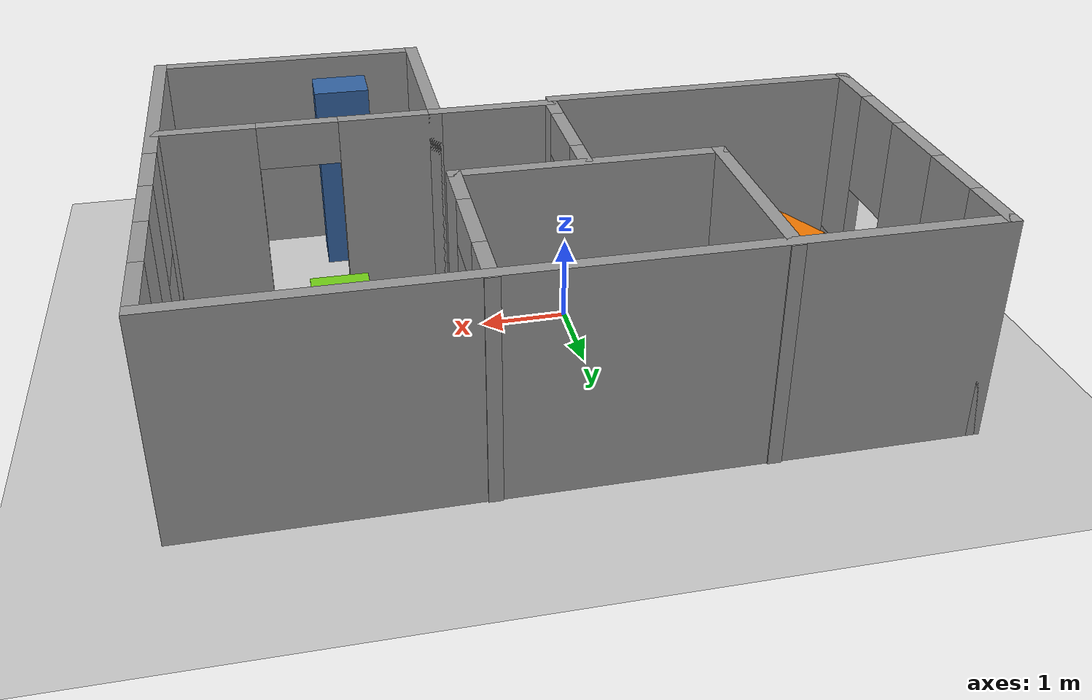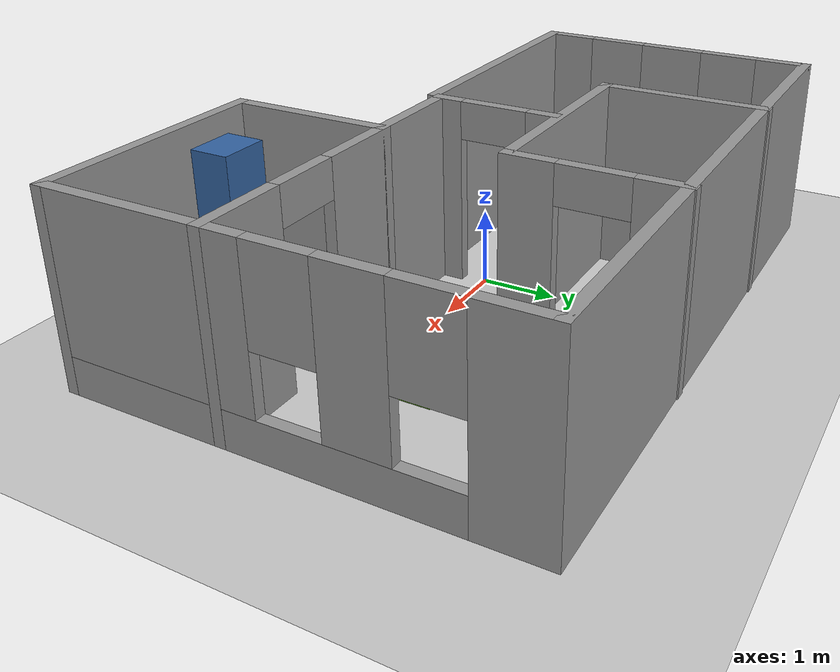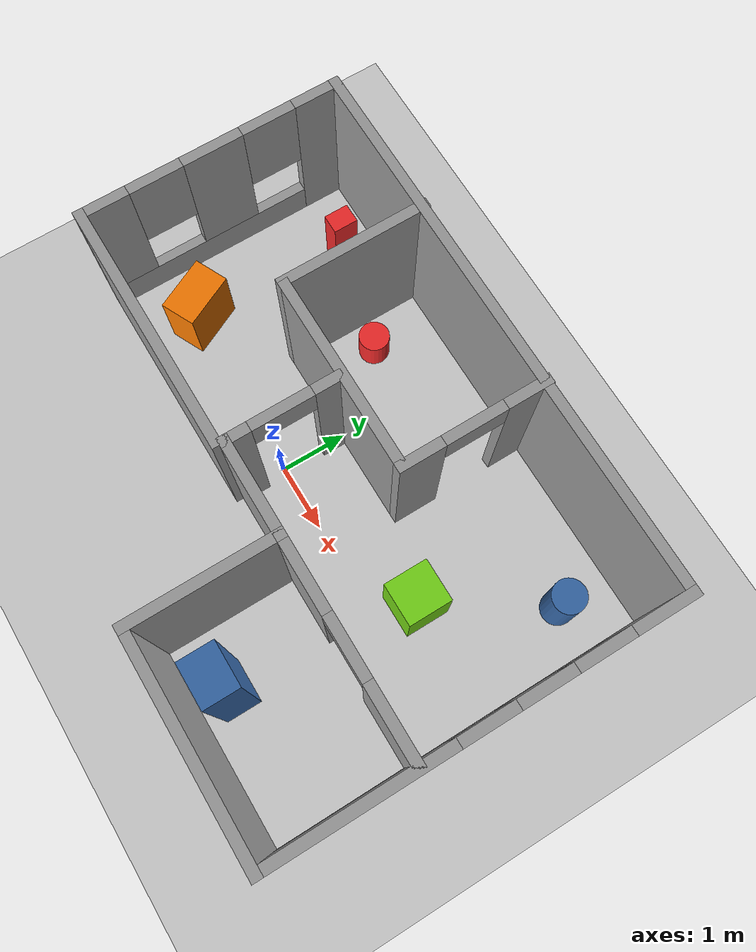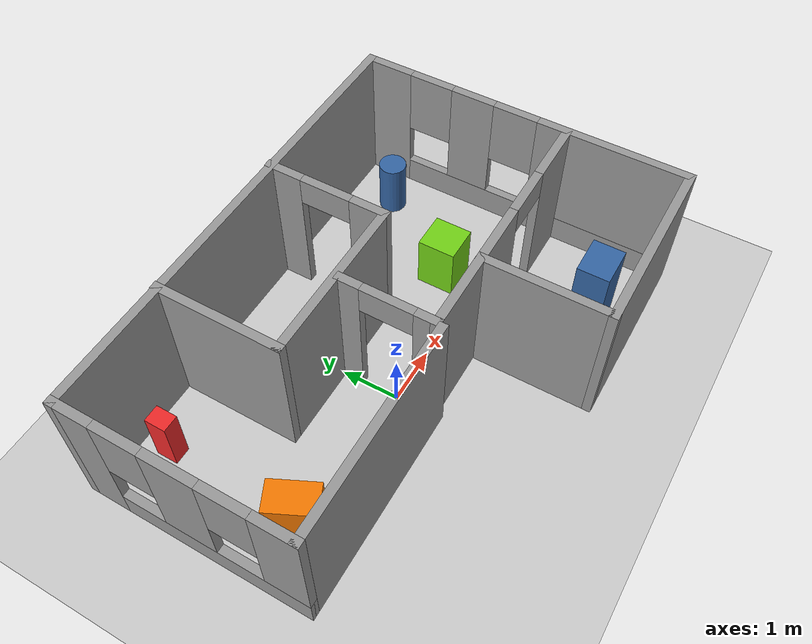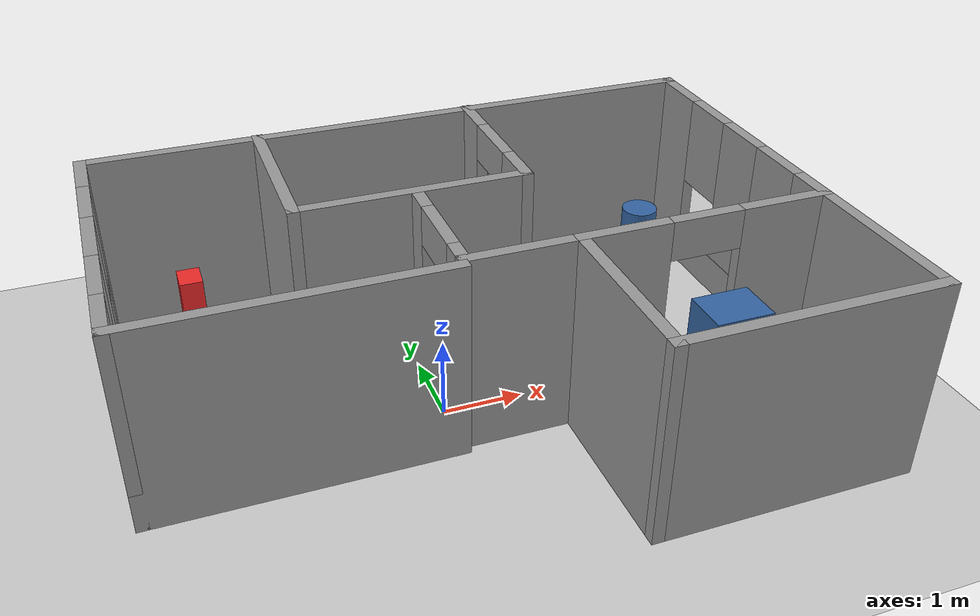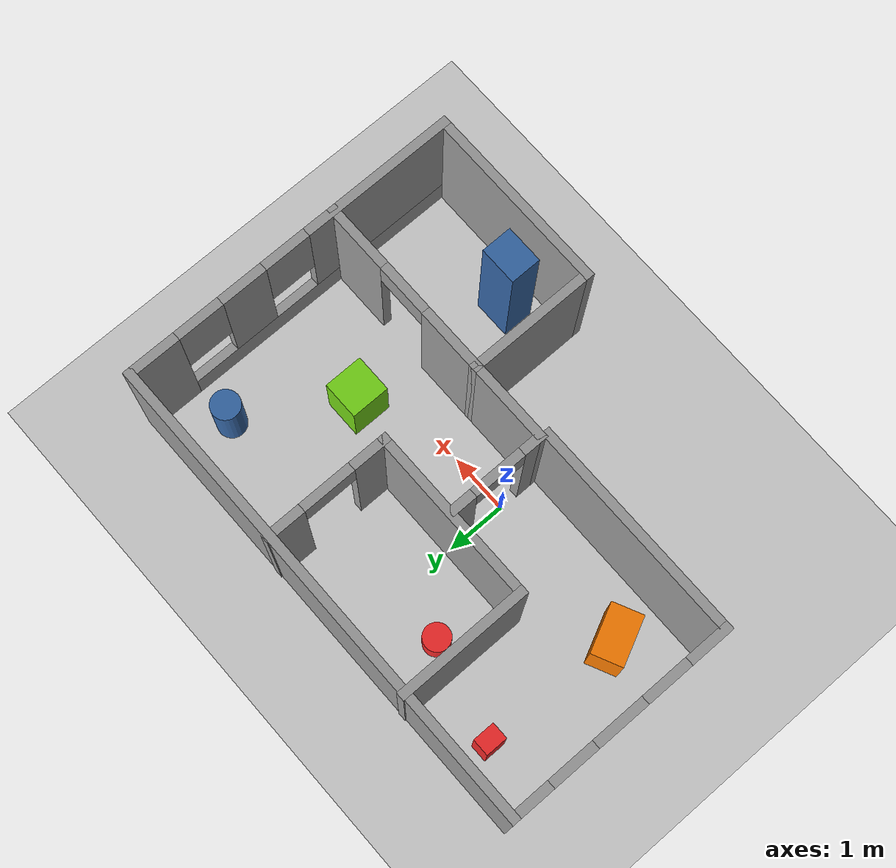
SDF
<sdf version="1.7">
 <world name="default">
  <light name="sun" type="directional">
   <pose>0 0 10 0 -0 0</pose>
   <diffuse>0.8 0.8 0.8 1</diffuse>
   <specular>0.2 0.2 0.2 1</specular>
   <attenuation>
    <range>1000</range>
    <constant>0.9</constant>
    <linear>0.01</linear>
    <quadratic>0.001</quadratic>
   </attenuation>
   <direction>-0.5 0.1 -0.9</direction>
   <spot><inner_angle>0</inner_angle><outer_angle>0</outer_angle><falloff>0</falloff></spot>
  </light>
  <model name="ground_plane">
   <static>1</static>
   <link name="link">
    <collision name="collision">
     <geometry><plane><normal>0 0 1</normal><size>100 100</size></plane></geometry>
     <surface>
      <contact><collide_bitmask>65535</collide_bitmask></contact>
      <friction><ode><mu>100</mu><mu2>50</mu2></ode></friction>
     </surface>
    </collision>
    <visual name="visual">
     <cast_shadows>0</cast_shadows>
     <geometry><plane><normal>0 0 1</normal><size>100 100</size></plane></geometry>
     <material>
      <script><uri>file://media/materials/scripts/gazebo.material</uri><name>Gazebo/Grey</name></script>
     </material>
    </visual>
   </link>
  </model>
  <gravity>0 0 -9.8</gravity>
  <magnetic_field>6e-06 2.3e-05 -4.2e-05</magnetic_field>
  <atmosphere type="adiabatic"/>
  <physics type="ode">
   <max_step_size>0.001</max_step_size>
   <real_time_factor>1</real_time_factor>
   <real_time_update_rate>1000</real_time_update_rate>
  </physics>
  <scene><ambient>0.4 0.4 0.4 1</ambient><background>0.7 0.7 0.7 1</background><shadows>1</shadows></scene>
  <spherical_coordinates>
   <surface_model>EARTH_WGS84</surface_model>
   <latitude_deg>0</latitude_deg>
   <longitude_deg>0</longitude_deg>
   <elevation>0</elevation>
   <heading_deg>0</heading_deg>
  </spherical_coordinates>
  <model name="dd_world">
   <pose>0.440177 0.38994 0 0 -0 0</pose>
   <link name="Wall_0">
    <collision name="Wall_0_Collision">
     <geometry><box><size>8.25 0.15 2.5</size></box></geometry>
     <pose>0 0 1.25 0 -0 0</pose>
    </collision>
    <visual name="Wall_0_Visual">
     <pose>0 0 1.25 0 -0 0</pose>
     <geometry><box><size>8.25 0.15 2.5</size></box></geometry>
     <material>
      <script><uri>file://media/materials/scripts/gazebo.material</uri><name>Gazebo/Grey</name></script>
      <ambient>1 1 1 1</ambient>
     </material>
     <meta><layer>0</layer></meta>
    </visual>
    <pose>-0 2.72358 0 0 -0 0</pose>
   </link>
   <link name="Wall_1">
    <pose>4.05 -0.201418 0 0 -0 -1.5708</pose>
    <visual name="Wall_1_Visual_0">
     <pose>-2.5416 0 1.25 0 -0 0</pose>
     <geometry><box><size>0.916794 0.15 2.5</size></box></geometry>
     <material>
      <script><uri>file://media/materials/scripts/gazebo.material</uri><name>Gazebo/Grey</name></script>
      <ambient>1 1 1 1</ambient>
     </material>
     <meta><layer>0</layer></meta>
    </visual>
    <collision name="Wall_1_Collision_0">
     <geometry><box><size>0.916794 0.15 2.5</size></box></geometry>
     <pose>-2.5416 0 1.25 0 -0 0</pose>
    </collision>
    <visual name="Wall_1_Visual_1">
     <pose>0.458397 0 0.25 0 -0 0</pose>
     <geometry><box><size>5.08321 0.15 0.5</size></box></geometry>
     <material>
      <script><uri>file://media/materials/scripts/gazebo.material</uri><name>Gazebo/Grey</name></script>
      <ambient>1 1 1 1</ambient>
     </material>
     <meta><layer>0</layer></meta>
    </visual>
    <collision name="Wall_1_Collision_1">
     <geometry><box><size>5.08321 0.15 0.5</size></box></geometry>
     <pose>0.458397 0 0.25 0 -0 0</pose>
    </collision>
    <visual name="Wall_1_Visual_2">
     <pose>-0.887408 0 1.5 0 -0 0</pose>
     <geometry><box><size>0.791596 0.15 2</size></box></geometry>
     <material>
      <script><uri>file://media/materials/scripts/gazebo.material</uri><name>Gazebo/Grey</name></script>
      <ambient>1 1 1 1</ambient>
     </material>
     <meta><layer>0</layer></meta>
    </visual>
    <collision name="Wall_1_Collision_2">
     <geometry><box><size>0.791596 0.15 2</size></box></geometry>
     <pose>-0.887408 0 1.5 0 -0 0</pose>
    </collision>
    <visual name="Wall_1_Visual_3">
     <pose>1.6542 0 1.5 0 -0 0</pose>
     <geometry><box><size>2.69161 0.15 2</size></box></geometry>
     <material>
      <script><uri>file://media/materials/scripts/gazebo.material</uri><name>Gazebo/Grey</name></script>
      <ambient>1 1 1 1</ambient>
     </material>
     <meta><layer>0</layer></meta>
    </visual>
    <collision name="Wall_1_Collision_3">
     <geometry><box><size>2.69161 0.15 2</size></box></geometry>
     <pose>1.6542 0 1.5 0 -0 0</pose>
    </collision>
    <visual name="Wall_1_Visual_4">
     <pose>-1.68321 0 1.9 0 -0 0</pose>
     <geometry><box><size>0.8 0.15 1.2</size></box></geometry>
     <material>
      <script><uri>file://media/materials/scripts/gazebo.material</uri><name>Gazebo/Grey</name></script>
      <ambient>1 1 1 1</ambient>
     </material>
     <meta><layer>0</layer></meta>
    </visual>
    <collision name="Wall_1_Collision_4">
     <geometry><box><size>0.8 0.15 1.2</size></box></geometry>
     <pose>-1.68321 0 1.9 0 -0 0</pose>
    </collision>
    <visual name="Wall_1_Visual_5">
     <pose>-0.09161 0 1.9 0 -0 0</pose>
     <geometry><box><size>0.8 0.15 1.2</size></box></geometry>
     <material>
      <script><uri>file://media/materials/scripts/gazebo.material</uri><name>Gazebo/Grey</name></script>
      <ambient>1 1 1 1</ambient>
     </material>
     <meta><layer>0</layer></meta>
    </visual>
    <collision name="Wall_1_Collision_5">
     <geometry><box><size>0.8 0.15 1.2</size></box></geometry>
     <pose>-0.09161 0 1.9 0 -0 0</pose>
    </collision>
   </link>
   <link name="Wall_11">
    <collision name="Wall_11_Collision">
     <geometry><box><size>1.5 0.15 2.5</size></box></geometry>
     <pose>0 0 1.25 0 -0 0</pose>
    </collision>
    <visual name="Wall_11_Visual">
     <pose>0 0 1.25 0 -0 0</pose>
     <geometry><box><size>1.5 0.15 2.5</size></box></geometry>
     <material>
      <script><uri>file://media/materials/scripts/gazebo.material</uri><name>Gazebo/Grey</name></script>
      <ambient>1 1 1 1</ambient>
     </material>
     <meta><layer>0</layer></meta>
    </visual>
    <pose>0.275 -1.02642 0 0 -0 3.14159</pose>
   </link>
   <link name="Wall_12">
    <pose>-0.4 -0.226418 0 0 -0 1.5708</pose>
    <visual name="Wall_12_Visual_0">
     <pose>-0.66541 0 1.25 0 -0 0</pose>
     <geometry><box><size>0.419179 0.15 2.5</size></box></geometry>
     <material>
      <script><uri>file://media/materials/scripts/gazebo.material</uri><name>Gazebo/Grey</name></script>
      <ambient>1 1 1 1</ambient>
     </material>
     <meta><layer>0</layer></meta>
    </visual>
    <collision name="Wall_12_Collision_0">
     <geometry><box><size>0.419179 0.15 2.5</size></box></geometry>
     <pose>-0.66541 0 1.25 0 -0 0</pose>
    </collision>
    <visual name="Wall_12_Visual_1">
     <pose>0.65959 0 1.25 0 -0 0</pose>
     <geometry><box><size>0.430821 0.15 2.5</size></box></geometry>
     <material>
      <script><uri>file://media/materials/scripts/gazebo.material</uri><name>Gazebo/Grey</name></script>
      <ambient>1 1 1 1</ambient>
     </material>
     <meta><layer>0</layer></meta>
    </visual>
    <collision name="Wall_12_Collision_1">
     <geometry><box><size>0.430821 0.15 2.5</size></box></geometry>
     <pose>0.65959 0 1.25 0 -0 0</pose>
    </collision>
    <visual name="Wall_12_Visual_2">
     <pose>-0.005821 0 2.25 0 -0 0</pose>
     <geometry><box><size>0.9 0.15 0.5</size></box></geometry>
     <material>
      <script><uri>file://media/materials/scripts/gazebo.material</uri><name>Gazebo/Grey</name></script>
      <ambient>1 1 1 1</ambient>
     </material>
     <meta><layer>0</layer></meta>
    </visual>
    <collision name="Wall_12_Collision_2">
     <geometry><box><size>0.9 0.15 0.5</size></box></geometry>
     <pose>-0.005821 0 2.25 0 -0 0</pose>
    </collision>
   </link>
   <link name="Wall_14">
    <pose>-4.05 0.798582 0 0 -0 -1.5708</pose>
    <visual name="Wall_14_Visual_0">
     <pose>-1.62905 0 1.25 0 -0 0</pose>
     <geometry><box><size>0.741894 0.15 2.5</size></box></geometry>
     <material>
      <script><uri>file://media/materials/scripts/gazebo.material</uri><name>Gazebo/Grey</name></script>
      <ambient>1 1 1 1</ambient>
     </material>
     <meta><layer>0</layer></meta>
    </visual>
    <collision name="Wall_14_Collision_0">
     <geometry><box><size>0.741894 0.15 2.5</size></box></geometry>
     <pose>-1.62905 0 1.25 0 -0 0</pose>
    </collision>
    <visual name="Wall_14_Visual_1">
     <pose>0.370947 0 0.25 0 -0 0</pose>
     <geometry><box><size>3.25811 0.15 0.5</size></box></geometry>
     <material>
      <script><uri>file://media/materials/scripts/gazebo.material</uri><name>Gazebo/Grey</name></script>
      <ambient>1 1 1 1</ambient>
     </material>
     <meta><layer>0</layer></meta>
    </visual>
    <collision name="Wall_14_Collision_1">
     <geometry><box><size>3.25811 0.15 0.5</size></box></geometry>
     <pose>0.370947 0 0.25 0 -0 0</pose>
    </collision>
    <visual name="Wall_14_Visual_2">
     <pose>-0.009838 0 1.5 0 -0 0</pose>
     <geometry><box><size>0.896536 0.15 2</size></box></geometry>
     <material>
      <script><uri>file://media/materials/scripts/gazebo.material</uri><name>Gazebo/Grey</name></script>
      <ambient>1 1 1 1</ambient>
     </material>
     <meta><layer>0</layer></meta>
    </visual>
    <collision name="Wall_14_Collision_2">
     <geometry><box><size>0.896536 0.15 2</size></box></geometry>
     <pose>-0.009838 0 1.5 0 -0 0</pose>
    </collision>
    <visual name="Wall_14_Visual_3">
     <pose>1.61922 0 1.5 0 -0 0</pose>
     <geometry><box><size>0.76157 0.15 2</size></box></geometry>
     <material>
      <script><uri>file://media/materials/scripts/gazebo.material</uri><name>Gazebo/Grey</name></script>
      <ambient>1 1 1 1</ambient>
     </material>
     <meta><layer>0</layer></meta>
    </visual>
    <collision name="Wall_14_Collision_3">
     <geometry><box><size>0.76157 0.15 2</size></box></geometry>
     <pose>1.61922 0 1.5 0 -0 0</pose>
    </collision>
    <visual name="Wall_14_Visual_4">
     <pose>-0.858106 0 1.9 0 -0 0</pose>
     <geometry><box><size>0.8 0.15 1.2</size></box></geometry>
     <material>
      <script><uri>file://media/materials/scripts/gazebo.material</uri><name>Gazebo/Grey</name></script>
      <ambient>1 1 1 1</ambient>
     </material>
     <meta><layer>0</layer></meta>
    </visual>
    <collision name="Wall_14_Collision_4">
     <geometry><box><size>0.8 0.15 1.2</size></box></geometry>
     <pose>-0.858106 0 1.9 0 -0 0</pose>
    </collision>
    <visual name="Wall_14_Visual_5">
     <pose>0.83843 0 1.9 0 -0 0</pose>
     <geometry><box><size>0.8 0.15 1.2</size></box></geometry>
     <material>
      <script><uri>file://media/materials/scripts/gazebo.material</uri><name>Gazebo/Grey</name></script>
      <ambient>1 1 1 1</ambient>
     </material>
     <meta><layer>0</layer></meta>
    </visual>
    <collision name="Wall_14_Collision_5">
     <geometry><box><size>0.8 0.15 1.2</size></box></geometry>
     <pose>0.83843 0 1.9 0 -0 0</pose>
    </collision>
   </link>
   <link name="Wall_15">
    <collision name="Wall_15_Collision">
     <geometry><box><size>3.75 0.15 2.5</size></box></geometry>
     <pose>0 0 1.25 0 -0 0</pose>
    </collision>
    <visual name="Wall_15_Visual">
     <pose>0 0 1.25 0 -0 0</pose>
     <geometry><box><size>3.75 0.15 2.5</size></box></geometry>
     <material>
      <script><uri>file://media/materials/scripts/gazebo.material</uri><name>Gazebo/Grey</name></script>
      <ambient>1 1 1 1</ambient>
     </material>
     <meta><layer>0</layer></meta>
    </visual>
    <pose>-2.25 -1.12642 0 0 -0 0</pose>
   </link>
   <link name="Wall_3">
    <collision name="Wall_3_Collision">
     <geometry><box><size>3.25 0.15 2.5</size></box></geometry>
     <pose>0 0 1.25 0 -0 0</pose>
    </collision>
    <visual name="Wall_3_Visual">
     <pose>0 0 1.25 0 -0 0</pose>
     <geometry><box><size>3.25 0.15 2.5</size></box></geometry>
     <material>
      <script><uri>file://media/materials/scripts/gazebo.material</uri><name>Gazebo/Grey</name></script>
      <ambient>1 1 1 1</ambient>
     </material>
     <meta><layer>0</layer></meta>
    </visual>
    <pose>2.5 -3.12642 0 0 -0 3.14159</pose>
   </link>
   <link name="Wall_4">
    <collision name="Wall_4_Collision">
     <geometry><box><size>2.25 0.15 2.5</size></box></geometry>
     <pose>0 0 1.25 0 -0 0</pose>
    </collision>
    <visual name="Wall_4_Visual">
     <pose>0 0 1.25 0 -0 0</pose>
     <geometry><box><size>2.25 0.15 2.5</size></box></geometry>
     <material>
      <script><uri>file://media/materials/scripts/gazebo.material</uri><name>Gazebo/Grey</name></script>
      <ambient>1 1 1 1</ambient>
     </material>
     <meta><layer>0</layer></meta>
    </visual>
    <pose>0.95 -2.07642 0 0 -0 1.5708</pose>
   </link>
   <link name="Wall_5">
    <pose>2.5 -1.02642 0 0 -0 0</pose>
    <visual name="Wall_5_Visual_0">
     <pose>-1.04186 0 1.25 0 -0 0</pose>
     <geometry><box><size>1.16628 0.15 2.5</size></box></geometry>
     <material>
      <script><uri>file://media/materials/scripts/gazebo.material</uri><name>Gazebo/Grey</name></script>
      <ambient>1 1 1 1</ambient>
     </material>
     <meta><layer>0</layer></meta>
    </visual>
    <collision name="Wall_5_Collision_0">
     <geometry><box><size>1.16628 0.15 2.5</size></box></geometry>
     <pose>-1.04186 0 1.25 0 -0 0</pose>
    </collision>
    <visual name="Wall_5_Visual_1">
     <pose>1.03314 0 1.25 0 -0 0</pose>
     <geometry><box><size>1.18372 0.15 2.5</size></box></geometry>
     <material>
      <script><uri>file://media/materials/scripts/gazebo.material</uri><name>Gazebo/Grey</name></script>
      <ambient>1 1 1 1</ambient>
     </material>
     <meta><layer>0</layer></meta>
    </visual>
    <collision name="Wall_5_Collision_1">
     <geometry><box><size>1.18372 0.15 2.5</size></box></geometry>
     <pose>1.03314 0 1.25 0 -0 0</pose>
    </collision>
    <visual name="Wall_5_Visual_2">
     <pose>-0.008717 0 2.25 0 -0 0</pose>
     <geometry><box><size>0.9 0.15 0.5</size></box></geometry>
     <material>
      <script><uri>file://media/materials/scripts/gazebo.material</uri><name>Gazebo/Grey</name></script>
      <ambient>1 1 1 1</ambient>
     </material>
     <meta><layer>0</layer></meta>
    </visual>
    <collision name="Wall_5_Collision_2">
     <geometry><box><size>0.9 0.15 0.5</size></box></geometry>
     <pose>-0.008717 0 2.25 0 -0 0</pose>
    </collision>
   </link>
   <link name="Wall_7">
    <collision name="Wall_7_Collision">
     <geometry><box><size>2.25 0.15 2.5</size></box></geometry>
     <pose>0 0 1.25 0 -0 0</pose>
    </collision>
    <visual name="Wall_7_Visual">
     <pose>0 0 1.25 0 -0 0</pose>
     <geometry><box><size>2.25 0.15 2.5</size></box></geometry>
     <material>
      <script><uri>file://media/materials/scripts/gazebo.material</uri><name>Gazebo/Grey</name></script>
      <ambient>1 1 1 1</ambient>
     </material>
     <meta><layer>0</layer></meta>
    </visual>
    <pose>-1.86374 1.69107 0 0 -0 -1.5708</pose>
   </link>
   <link name="Wall_8">
    <collision name="Wall_8_Collision">
     <geometry><box><size>3 0.15 2.5</size></box></geometry>
     <pose>0 0 1.25 0 -0 0</pose>
    </collision>
    <visual name="Wall_8_Visual">
     <pose>0 0 1.25 0 -0 0</pose>
     <geometry><box><size>3 0.15 2.5</size></box></geometry>
     <material>
      <script><uri>file://media/materials/scripts/gazebo.material</uri><name>Gazebo/Grey</name></script>
      <ambient>1 1 1 1</ambient>
     </material>
     <meta><layer>0</layer></meta>
    </visual>
    <pose>-0.438742 0.641072 0 0 -0 0</pose>
   </link>
   <link name="Wall_9">
    <pose>0.986258 1.69107 0 0 -0 1.5708</pose>
    <visual name="Wall_9_Visual_0">
     <pose>-0.787202 0 1.25 0 -0 0</pose>
     <geometry><box><size>0.675596 0.15 2.5</size></box></geometry>
     <material>
      <script><uri>file://media/materials/scripts/gazebo.material</uri><name>Gazebo/Grey</name></script>
      <ambient>1 1 1 1</ambient>
     </material>
     <meta><layer>0</layer></meta>
    </visual>
    <collision name="Wall_9_Collision_0">
     <geometry><box><size>0.675596 0.15 2.5</size></box></geometry>
     <pose>-0.787202 0 1.25 0 -0 0</pose>
    </collision>
    <visual name="Wall_9_Visual_1">
     <pose>0.787798 0 1.25 0 -0 0</pose>
     <geometry><box><size>0.674404 0.15 2.5</size></box></geometry>
     <material>
      <script><uri>file://media/materials/scripts/gazebo.material</uri><name>Gazebo/Grey</name></script>
      <ambient>1 1 1 1</ambient>
     </material>
     <meta><layer>0</layer></meta>
    </visual>
    <collision name="Wall_9_Collision_1">
     <geometry><box><size>0.674404 0.15 2.5</size></box></geometry>
     <pose>0.787798 0 1.25 0 -0 0</pose>
    </collision>
    <visual name="Wall_9_Visual_2">
     <pose>0.000596 0 2.25 0 -0 0</pose>
     <geometry><box><size>0.9 0.15 0.5</size></box></geometry>
     <material>
      <script><uri>file://media/materials/scripts/gazebo.material</uri><name>Gazebo/Grey</name></script>
      <ambient>1 1 1 1</ambient>
     </material>
     <meta><layer>0</layer></meta>
    </visual>
    <collision name="Wall_9_Collision_2">
     <geometry><box><size>0.9 0.15 0.5</size></box></geometry>
     <pose>0.000596 0 2.25 0 -0 0</pose>
    </collision>
   </link>
   <static>1</static>
  </model>
  <model name="box_red">
   <link name="link">
    <inertial>
     <mass>100</mass>
     <inertia><ixx>9.49683</ixx><ixy>0</ixy><ixz>0</ixz><iyy>9.04385</iyy><iyz>0</iyz><izz>1.87401</izz></inertia>
    </inertial>
    <visual name="visual">
     <geometry><box><size>0.291996 0.373657 1</size></box></geometry>
     <material>
      <script><name>Gazebo/Grey</name><uri>file://media/materials/scripts/gazebo.material</uri></script>
      <shader type="pixel"><normal_map>__default__</normal_map></shader>
      <ambient>0.937 0.161 0.161 1</ambient>
      <diffuse>0.7 0.7 0.7 1</diffuse>
      <specular>0.01 0.01 0.01 1</specular>
      <emissive>0 0 0 1</emissive>
     </material>
    </visual>
    <collision name="collision">
     <geometry><box><size>0.291996 0.373657 1</size></box></geometry>
     <surface>
      <friction>
       <ode><mu>1</mu><mu2>1</mu2><fdir1>0 0 0</fdir1><slip1>0</slip1><slip2>0</slip2></ode>
       <torsional>
        <coefficient>1</coefficient>
        <patch_radius>0</patch_radius>
        <surface_radius>0</surface_radius>
        <use_patch_radius>1</use_patch_radius>
        <ode><slip>0</slip></ode>
       </torsional>
      </friction>
      <bounce><restitution_coefficient>0</restitution_coefficient><threshold>1e+06</threshold></bounce>
      <contact>
       <collide_without_contact>0</collide_without_contact>
       <collide_without_contact_bitmask>1</collide_without_contact_bitmask>
       <collide_bitmask>1</collide_bitmask>
       <ode>
        <soft_cfm>0</soft_cfm>
        <soft_erp>0.2</soft_erp>
        <kp>1e+13</kp>
        <kd>1</kd>
        <max_vel>0.01</max_vel>
        <min_depth>0</min_depth>
       </ode>
       <bullet>
        <split_impulse>1</split_impulse>
        <split_impulse_penetration_threshold>-0.01</split_impulse_penetration_threshold>
        <soft_cfm>0</soft_cfm>
        <soft_erp>0.2</soft_erp>
        <kp>1e+13</kp>
        <kd>1</kd>
       </bullet>
      </contact>
     </surface>
    </collision>
   </link>
   <static>0</static>
   <pose>-2.56548 2.52498 0.5 -2e-06 -1e-06 -0.000286</pose>
  </model>
  <model name="box_orange">
   <link name="link">
    <inertial>
     <mass>100</mass>
     <inertia><ixx>14.085</ixx><ixy>0</ixy><ixz>0</ixz><iyy>10.6206</iyy><iyz>0</iyz><izz>8.03887</izz></inertia>
    </inertial>
    <visual name="visual">
     <geometry><box><size>0.523898 0.83078 1</size></box></geometry>
     <material>
      <script><name>Gazebo/Grey</name><uri>file://media/materials/scripts/gazebo.material</uri></script>
      <shader type="pixel"><normal_map>__default__</normal_map></shader>
      <ambient>0.961 0.475 0 1</ambient>
      <diffuse>0.7 0.7 0.7 1</diffuse>
      <specular>0.01 0.01 0.01 1</specular>
      <emissive>0 0 0 1</emissive>
     </material>
    </visual>
    <collision name="collision">
     <geometry><box><size>0.523898 0.83078 1</size></box></geometry>
     <surface>
      <friction>
       <ode><mu>1</mu><mu2>1</mu2><fdir1>0 0 0</fdir1><slip1>0</slip1><slip2>0</slip2></ode>
       <torsional>
        <coefficient>1</coefficient>
        <patch_radius>0</patch_radius>
        <surface_radius>0</surface_radius>
        <use_patch_radius>1</use_patch_radius>
        <ode><slip>0</slip></ode>
       </torsional>
      </friction>
      <bounce><restitution_coefficient>0</restitution_coefficient><threshold>1e+06</threshold></bounce>
      <contact>
       <collide_without_contact>0</collide_without_contact>
       <collide_without_contact_bitmask>1</collide_without_contact_bitmask>
       <collide_bitmask>1</collide_bitmask>
       <ode>
        <soft_cfm>0</soft_cfm>
        <soft_erp>0.2</soft_erp>
        <kp>1e+13</kp>
        <kd>1</kd>
        <max_vel>0.01</max_vel>
        <min_depth>0</min_depth>
       </ode>
       <bullet>
        <split_impulse>1</split_impulse>
        <split_impulse_penetration_threshold>-0.01</split_impulse_penetration_threshold>
        <soft_cfm>0</soft_cfm>
        <soft_erp>0.2</soft_erp>
        <kp>1e+13</kp>
        <kd>1</kd>
       </bullet>
      </contact>
     </surface>
    </collision>
   </link>
   <static>0</static>
   <pose>-2.64516 0.150655 0.5 0 -0 0.448715</pose>
  </model>
  <model name="cylinder_red">
   <link name="link">
    <inertial>
     <mass>100</mass>
     <inertia><ixx>3.39138</ixx><ixy>0</ixy><ixz>0</ixz><iyy>3.39138</iyy><iyz>0</iyz><izz>2.52619</izz></inertia>
    </inertial>
    <visual name="visual">
     <geometry><cylinder><radius>0.224775</radius><length>0.505365</length></cylinder></geometry>
     <material>
      <script><name>Gazebo/Grey</name><uri>file://media/materials/scripts/gazebo.material</uri></script>
      <shader type="pixel"><normal_map>__default__</normal_map></shader>
      <ambient>0.937 0.161 0.161 1</ambient>
      <diffuse>0.7 0.7 0.7 1</diffuse>
      <specular>0.01 0.01 0.01 1</specular>
      <emissive>0 0 0 1</emissive>
     </material>
    </visual>
    <collision name="collision">
     <geometry><cylinder><radius>0.224775</radius><length>0.505365</length></cylinder></geometry>
     <surface>
      <friction>
       <ode><mu>1</mu><mu2>1</mu2><fdir1>0 0 0</fdir1><slip1>0</slip1><slip2>0</slip2></ode>
       <torsional>
        <coefficient>1</coefficient>
        <patch_radius>0</patch_radius>
        <surface_radius>0</surface_radius>
        <use_patch_radius>1</use_patch_radius>
        <ode><slip>0</slip></ode>
       </torsional>
      </friction>
      <bounce><restitution_coefficient>0</restitution_coefficient><threshold>1e+06</threshold></bounce>
      <contact>
       <collide_without_contact>0</collide_without_contact>
       <collide_without_contact_bitmask>1</collide_without_contact_bitmask>
       <collide_bitmask>1</collide_bitmask>
       <ode>
        <soft_cfm>0</soft_cfm>
        <soft_erp>0.2</soft_erp>
        <kp>1e+13</kp>
        <kd>1</kd>
        <max_vel>0.01</max_vel>
        <min_depth>0</min_depth>
       </ode>
       <bullet>
        <split_impulse>1</split_impulse>
        <split_impulse_penetration_threshold>-0.01</split_impulse_penetration_threshold>
        <soft_cfm>0</soft_cfm>
        <soft_erp>0.2</soft_erp>
        <kp>1e+13</kp>
        <kd>1</kd>
       </bullet>
      </contact>
     </surface>
    </collision>
   </link>
   <static>0</static>
   <pose>-0.919958 2.08857 0.252683 0 -0 0</pose>
  </model>
  <model name="box_green">
   <link name="link">
    <inertial>
     <mass>100</mass>
     <inertia><ixx>11.9587</ixx><ixy>0</ixy><ixz>0</ixz><iyy>11.7675</iyy><iyz>0</iyz><izz>7.05951</izz></inertia>
    </inertial>
    <visual name="visual">
     <geometry><box><size>0.641947 0.65958 1</size></box></geometry>
     <material>
      <script><name>Gazebo/Grey</name><uri>file://media/materials/scripts/gazebo.material</uri></script>
      <shader type="pixel"><normal_map>__default__</normal_map></shader>
      <ambient>0.451 0.824 0.086 1</ambient>
      <diffuse>0.7 0.7 0.7 1</diffuse>
      <specular>0.01 0.01 0.01 1</specular>
      <emissive>0 0 0 1</emissive>
     </material>
    </visual>
    <collision name="collision">
     <geometry><box><size>0.641947 0.65958 1</size></box></geometry>
     <surface>
      <friction>
       <ode><mu>1</mu><mu2>1</mu2><fdir1>0 0 0</fdir1><slip1>0</slip1><slip2>0</slip2></ode>
       <torsional>
        <coefficient>1</coefficient>
        <patch_radius>0</patch_radius>
        <surface_radius>0</surface_radius>
        <use_patch_radius>1</use_patch_radius>
        <ode><slip>0</slip></ode>
       </torsional>
      </friction>
      <bounce><restitution_coefficient>0</restitution_coefficient><threshold>1e+06</threshold></bounce>
      <contact>
       <collide_without_contact>0</collide_without_contact>
       <collide_without_contact_bitmask>1</collide_without_contact_bitmask>
       <collide_bitmask>1</collide_bitmask>
       <ode>
        <soft_cfm>0</soft_cfm>
        <soft_erp>0.2</soft_erp>
        <kp>1e+13</kp>
        <kd>1</kd>
        <max_vel>0.01</max_vel>
        <min_depth>0</min_depth>
       </ode>
       <bullet>
        <split_impulse>1</split_impulse>
        <split_impulse_penetration_threshold>-0.01</split_impulse_penetration_threshold>
        <soft_cfm>0</soft_cfm>
        <soft_erp>0.2</soft_erp>
        <kp>1e+13</kp>
        <kd>1</kd>
       </bullet>
      </contact>
     </surface>
    </collision>
   </link>
   <static>0</static>
   <pose>2.63978 0.578078 0.5 0 -0 0</pose>
  </model>
  <model name="cylinder_blue">
   <link name="link">
    <inertial>
     <mass>100</mass>
     <inertia><ixx>9.81871</ixx><ixy>0</ixy><ixz>0</ixz><iyy>9.81871</iyy><iyz>0</iyz><izz>2.97075</izz></inertia>
    </inertial>
    <visual name="visual">
     <geometry><cylinder><radius>0.243752</radius><length>1</length></cylinder></geometry>
     <material>
      <script><name>Gazebo/Grey</name><uri>file://media/materials/scripts/gazebo.material</uri></script>
      <shader type="pixel"><normal_map>__default__</normal_map></shader>
      <ambient>0.204 0.396 0.643 1</ambient>
      <diffuse>0.7 0.7 0.7 1</diffuse>
      <specular>0.01 0.01 0.01 1</specular>
      <emissive>0 0 0 1</emissive>
     </material>
    </visual>
    <collision name="collision">
     <geometry><cylinder><radius>0.243752</radius><length>1</length></cylinder></geometry>
     <surface>
      <friction>
       <ode><mu>1</mu><mu2>1</mu2><fdir1>0 0 0</fdir1><slip1>0</slip1><slip2>0</slip2></ode>
       <torsional>
        <coefficient>1</coefficient>
        <patch_radius>0</patch_radius>
        <surface_radius>0</surface_radius>
        <use_patch_radius>1</use_patch_radius>
        <ode><slip>0</slip></ode>
       </torsional>
      </friction>
      <bounce><restitution_coefficient>0</restitution_coefficient><threshold>1e+06</threshold></bounce>
      <contact>
       <collide_without_contact>0</collide_without_contact>
       <collide_without_contact_bitmask>1</collide_without_contact_bitmask>
       <collide_bitmask>1</collide_bitmask>
       <ode>
        <soft_cfm>0</soft_cfm>
        <soft_erp>0.2</soft_erp>
        <kp>1e+13</kp>
        <kd>1</kd>
        <max_vel>0.01</max_vel>
        <min_depth>0</min_depth>
       </ode>
       <bullet>
        <split_impulse>1</split_impulse>
        <split_impulse_penetration_threshold>-0.01</split_impulse_penetration_threshold>
        <soft_cfm>0</soft_cfm>
        <soft_erp>0.2</soft_erp>
        <kp>1e+13</kp>
        <kd>1</kd>
       </bullet>
      </contact>
     </surface>
    </collision>
   </link>
   <static>0</static>
   <pose>3.7097 2.23194 0.5 0 -0 0</pose>
  </model>
  <model name="box_blue">
   <link name="link">
    <inertial>
     <mass>100</mass>
     <inertia><ixx>47.2164</ixx><ixy>0</ixy><ixz>0</ixz><iyy>48.453</iyy><iyz>0</iyz><izz>5.73063</izz></inertia>
    </inertial>
    <visual name="visual">
     <geometry><box><size>0.646553 0.519273 2.323</size></box></geometry>
     <material>
      <script><name>Gazebo/Grey</name><uri>file://media/materials/scripts/gazebo.material</uri></script>
      <shader type="pixel"><normal_map>__default__</normal_map></shader>
      <ambient>0.204 0.396 0.643 1</ambient>
      <diffuse>0.7 0.7 0.7 1</diffuse>
      <specular>0.01 0.01 0.01 1</specular>
      <emissive>0 0 0 1</emissive>
     </material>
    </visual>
    <collision name="collision">
     <geometry><box><size>0.646553 0.519273 2.323</size></box></geometry>
     <surface>
      <friction>
       <ode><mu>1</mu><mu2>1</mu2><fdir1>0 0 0</fdir1><slip1>0</slip1><slip2>0</slip2></ode>
       <torsional>
        <coefficient>1</coefficient>
        <patch_radius>0</patch_radius>
        <surface_radius>0</surface_radius>
        <use_patch_radius>1</use_patch_radius>
        <ode><slip>0</slip></ode>
       </torsional>
      </friction>
      <bounce><restitution_coefficient>0</restitution_coefficient><threshold>1e+06</threshold></bounce>
      <contact>
       <collide_without_contact>0</collide_without_contact>
       <collide_without_contact_bitmask>1</collide_without_contact_bitmask>
       <collide_bitmask>1</collide_bitmask>
       <ode>
        <soft_cfm>0</soft_cfm>
        <soft_erp>0.2</soft_erp>
        <kp>1e+13</kp>
        <kd>1</kd>
        <max_vel>0.01</max_vel>
        <min_depth>0</min_depth>
       </ode>
       <bullet>
        <split_impulse>1</split_impulse>
        <split_impulse_penetration_threshold>-0.01</split_impulse_penetration_threshold>
        <soft_cfm>0</soft_cfm>
        <soft_erp>0.2</soft_erp>
        <kp>1e+13</kp>
        <kd>1</kd>
       </bullet>
      </contact>
     </surface>
    </collision>
   </link>
   <static>0</static>
   <pose>2.35339 -2.15692 1.1615 -1e-06 -1e-06 0.00041</pose>
  </model>
 </world>
</sdf>
